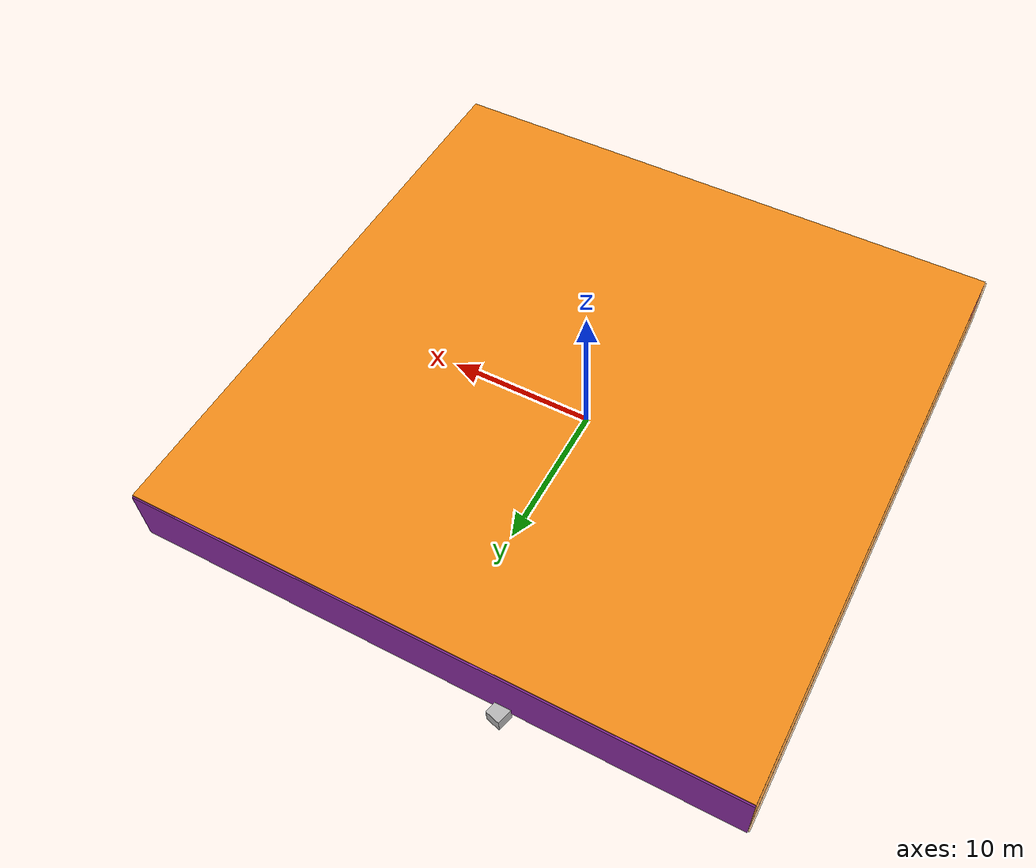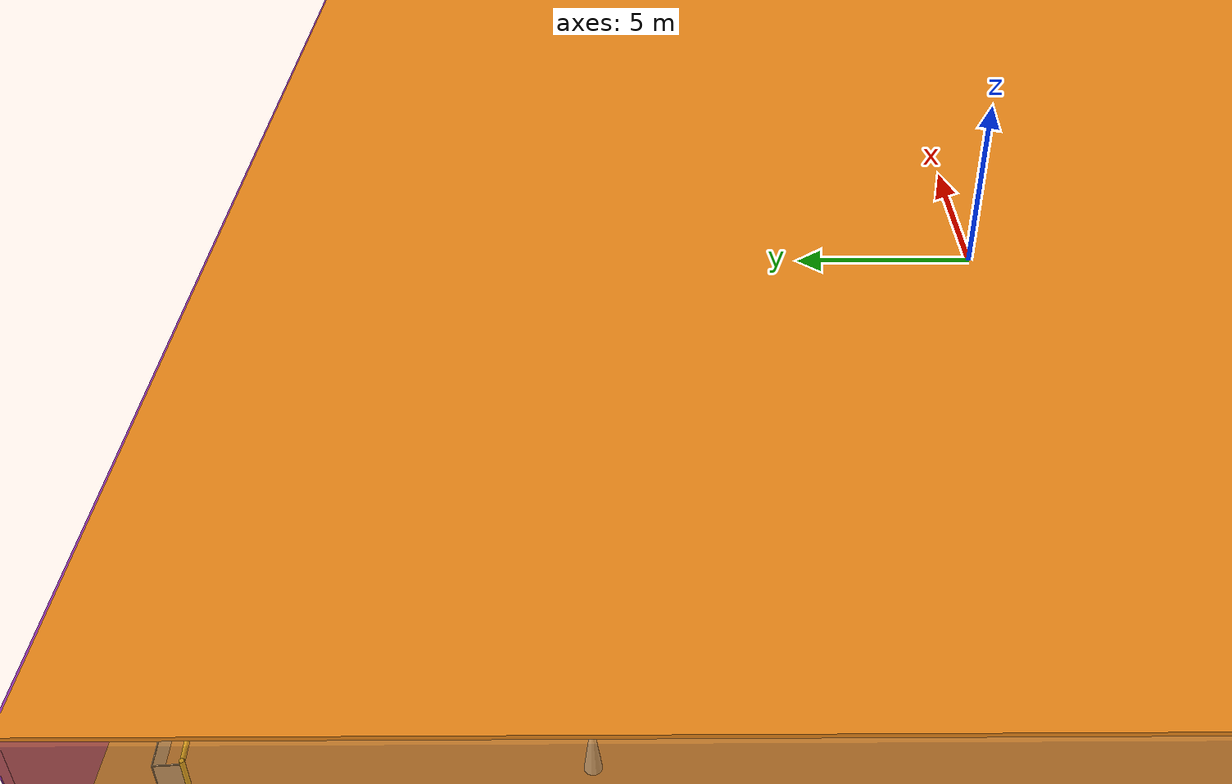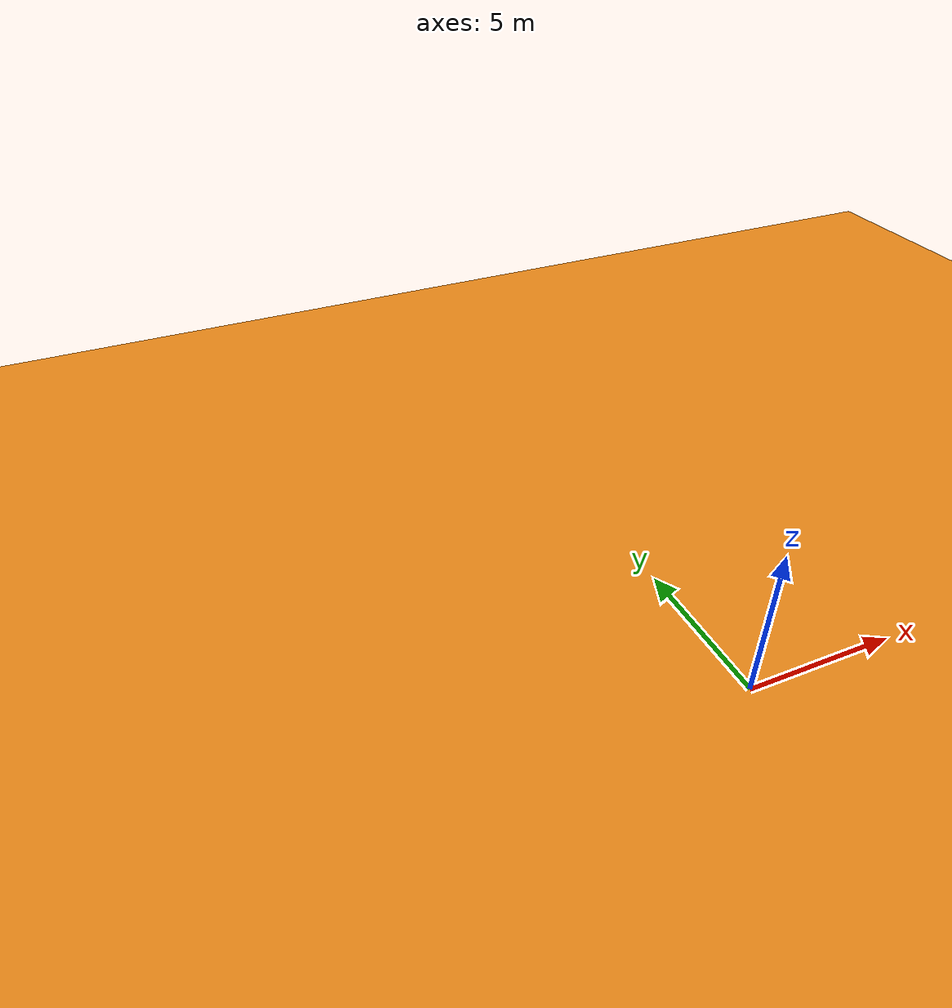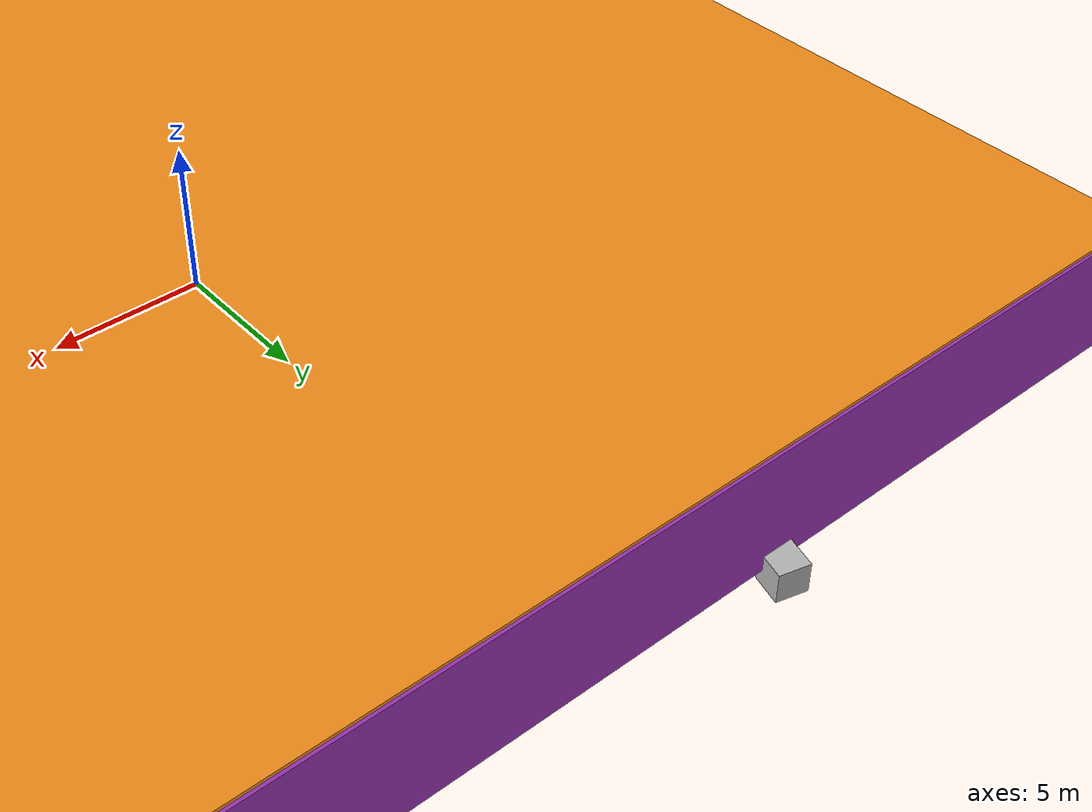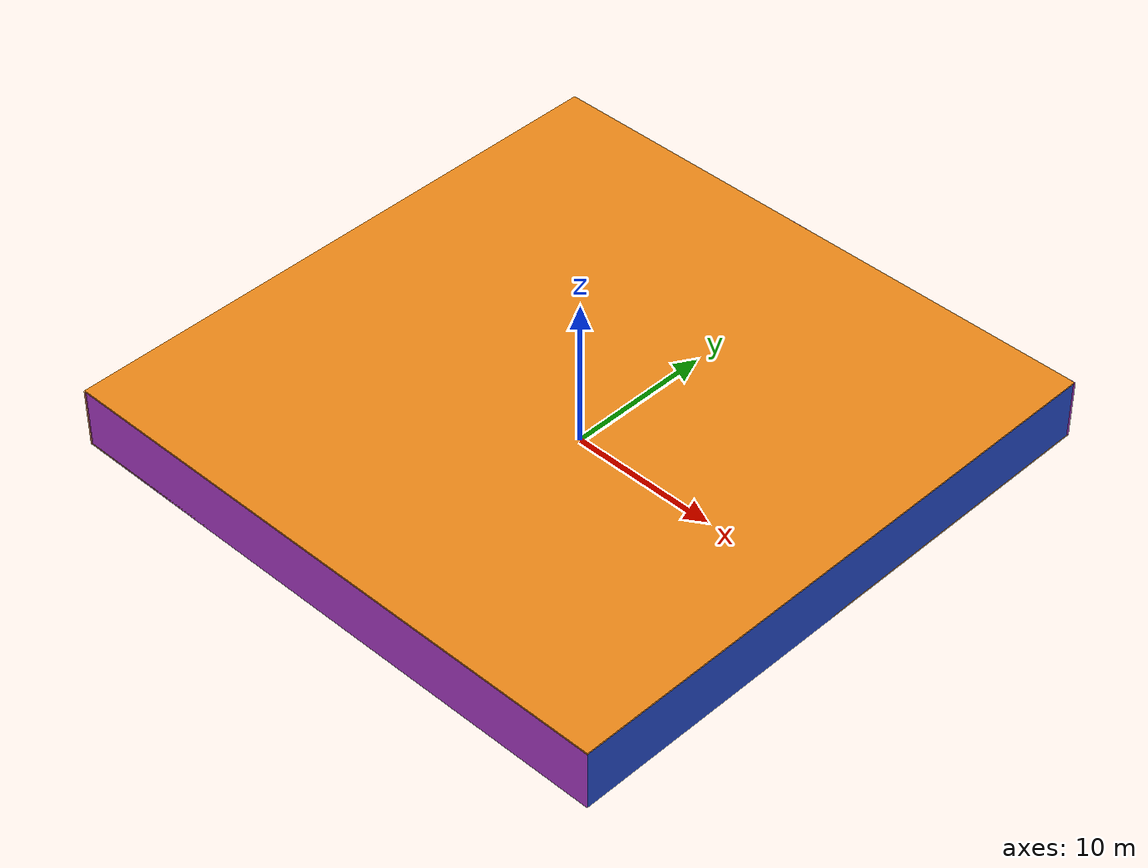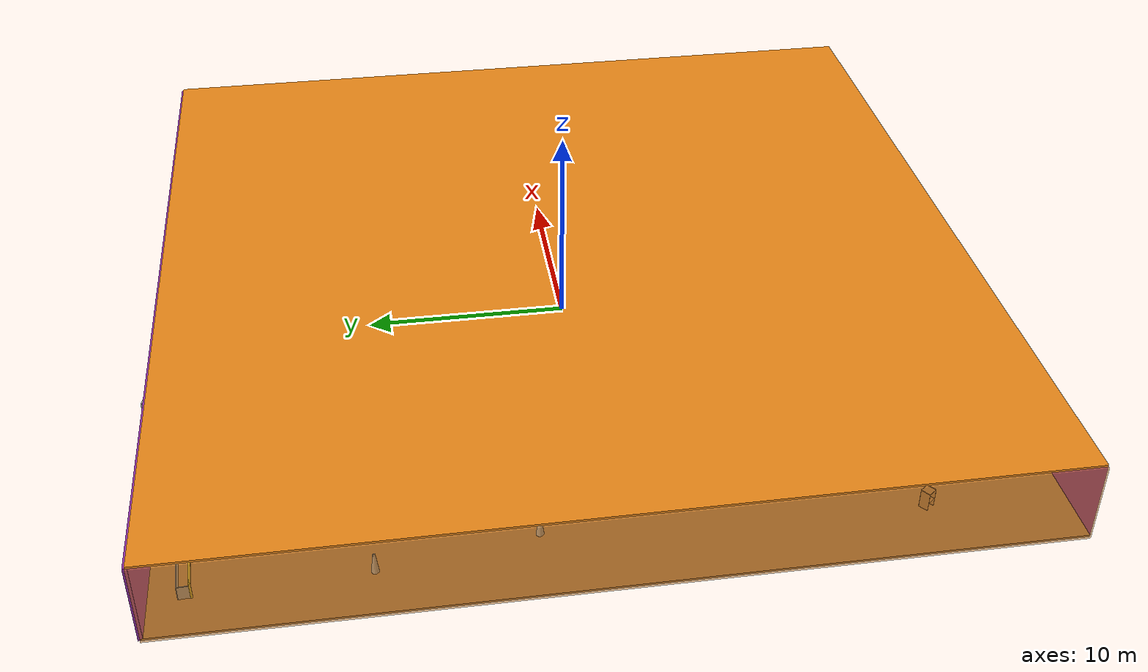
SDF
<sdf version="1.4">
 <world name="default">
  <physics type="ode">
   <max_step_size>0.001</max_step_size>
   <real_time_factor>1</real_time_factor>
   <real_time_update_rate>1000</real_time_update_rate>
   <gravity>0 0 -9.8</gravity>
  </physics>
  <scene><ambient>0.4 0.4 0.4 1</ambient><background>0.7 0.7 0.7 1</background><shadows>1</shadows></scene>
  <model name="Surrounding">
   <static>1</static>
   <link name="Ceiling">
    <collision name="Ceiling_Collision"><geometry><box><size>40 40 0.1</size></box></geometry></collision>
    <visual name="Ceiling_Visual">
     <geometry><box><size>40 40 0.1</size></box></geometry>
     <material>
      <script><uri>file://media/materials/scripts/gazebo.material</uri><name>Gazebo/Orange</name></script>
     </material>
    </visual>
    <pose>0 0 4.05 0 0 0</pose>
   </link>
   <link name="Wall_South">
    <collision name="Wall_South_Collision">
     <geometry><box><size>40 0 4</size></box></geometry>
     <pose>0 0 2 0 -0 0</pose>
    </collision>
    <visual name="Wall_South_Visual">
     <pose>0 0 2 0 -0 0</pose>
     <geometry><box><size>40 0 4</size></box></geometry>
     <material>
      <script><uri>file://media/materials/scripts/gazebo.material</uri><name>Gazebo/Purple</name></script>
     </material>
    </visual>
    <velocity_decay><linear>0</linear><angular>0</angular></velocity_decay>
    <pose>0 -20 0 0 -0 0</pose>
   </link>
   <link name="Wall_East">
    <collision name="Wall_21_Collision">
     <geometry><box><size>40 0 4</size></box></geometry>
     <pose>0 0 2 0 -0 0</pose>
    </collision>
    <visual name="Wall_21_Visual">
     <pose>0 0 2 0 -0 0</pose>
     <geometry><box><size>40 0 4</size></box></geometry>
     <material>
      <script><uri>file://media/materials/scripts/gazebo.material</uri><name>Gazebo/BlueLaser</name></script>
     </material>
    </visual>
    <velocity_decay><linear>0</linear><angular>0</angular></velocity_decay>
    <pose>20 0 0 0 -0 1.5708</pose>
   </link>
   <link name="Wall_North">
    <collision name="Wall_22_Collision">
     <geometry><box><size>40 0.2 4</size></box></geometry>
     <pose>0 0 2 0 -0 0</pose>
    </collision>
    <visual name="Wall_22_Visual">
     <pose>0 0 2 0 -0 0</pose>
     <geometry><box><size>40 0.2 4</size></box></geometry>
     <material>
      <script><uri>file://media/materials/scripts/gazebo.material</uri><name>Gazebo/Purple</name></script>
     </material>
    </visual>
    <velocity_decay><linear>0</linear><angular>0</angular></velocity_decay>
    <pose>0 20 0 0 -0 0</pose>
   </link>
   <link name="Wall_West">
    <collision name="Wall_23_Collision">
     <geometry><box><size>40 0.2 4</size></box></geometry>
     <pose>0 0 2 0 -0 0</pose>
    </collision>
    <visual name="Wall_23_Visual">
     <pose>0 0 2 0 -0 0</pose>
     <geometry><box><size>40 0.2 4</size></box></geometry>
     <material>
      <script>
       <uri>file://media/materials/scripts/gazebo.material</uri>
       <name>Gazebo/OrangeTransparent</name>
      </script>
     </material>
    </visual>
    <velocity_decay><linear>0</linear><angular>0</angular></velocity_decay>
    <pose>-20 0 0 0 0 -1.5708</pose>
   </link>
   <link name="Ground_link">
    <collision name="collision">
     <pose>0 0 .05 0 -0 0</pose>
     <geometry><box><size>40 40 0.1</size></box></geometry>
    </collision>
    <visual name="visual">
     <pose>0 0 .05 0 -0 0</pose>
     <geometry><box><size>40 40 0.1</size></box></geometry>
     <material>
      <script><uri>file://media/materials/scripts/gazebo.material</uri><name>Gazebo/WoodFloor</name></script>
     </material>
    </visual>
   </link>
   <static>1</static>
  </model>
  <spherical_coordinates>
   <surface_model>EARTH_WGS84</surface_model>
   <latitude_deg>0</latitude_deg>
   <longitude_deg>0</longitude_deg>
   <elevation>0</elevation>
   <heading_deg>0</heading_deg>
  </spherical_coordinates>
  <light name="lightball_0" type="diffuse">
   <diffuse>0.8 0.8 0.8 1</diffuse>
   <specular>0.2 0.2 0.2 1</specular>
   <attenuation>
    <range>100</range>
    <constant>0.7</constant>
    <linear>0.01</linear>
    <quadratic>0.001</quadratic>
   </attenuation>
   <direction>-0.5 0.1 -0.9</direction>
   <pose>-3.59324564344 -15.1989248533 0.9496213226 0 0 0</pose>
  </light>
  <light name="lightball_1" type="diffuse">
   <diffuse>0.8 0.8 0.8 1</diffuse>
   <specular>0.2 0.2 0.2 1</specular>
   <attenuation>
    <range>100</range>
    <constant>0.7</constant>
    <linear>0.01</linear>
    <quadratic>0.001</quadratic>
   </attenuation>
   <direction>-0.5 0.1 -0.9</direction>
   <pose>6.85773827004 -1.3734425039 2.50530160967 0 0 0</pose>
  </light>
  <light name="lightball_2" type="diffuse">
   <diffuse>0.8 0.8 0.8 1</diffuse>
   <specular>0.2 0.2 0.2 1</specular>
   <attenuation>
    <range>100</range>
    <constant>0.7</constant>
    <linear>0.01</linear>
    <quadratic>0.001</quadratic>
   </attenuation>
   <direction>-0.5 0.1 -0.9</direction>
   <pose>14.7640123655 18.5628832633 3.21964445935 0 0 0</pose>
  </light>
  <light name="lightball_3" type="diffuse">
   <diffuse>0.8 0.8 0.8 1</diffuse>
   <specular>0.2 0.2 0.2 1</specular>
   <attenuation>
    <range>100</range>
    <constant>0.7</constant>
    <linear>0.01</linear>
    <quadratic>0.001</quadratic>
   </attenuation>
   <direction>-0.5 0.1 -0.9</direction>
   <pose>8.91342435344 -11.0672750939 1.7185776639 0 0 0</pose>
  </light>
  <light name="lightball_4" type="diffuse">
   <diffuse>0.8 0.8 0.8 1</diffuse>
   <specular>0.2 0.2 0.2 1</specular>
   <attenuation>
    <range>100</range>
    <constant>0.7</constant>
    <linear>0.01</linear>
    <quadratic>0.001</quadratic>
   </attenuation>
   <direction>-0.5 0.1 -0.9</direction>
   <pose>4.51213670178 12.8979593193 2.26074349489 0 0 0</pose>
  </light>
  <include><uri>model://cabinet</uri><pose>-17.2005144895 -13.6401496847 0 0 0 0.655995294801</pose></include>
  <include>
   <uri>model://construction_cone</uri>
   <pose>-16.4444734205 3.42598426405 0 0 0 0.0738651523801</pose>
  </include>
  <include>
   <uri>model://construction_cone</uri>
   <pose>-17.6317048157 10.5495808096 0 0 0 1.43753984269</pose>
  </include>
  <include>
   <uri>model://robocup_3Dsim_goal</uri>
   <pose>-16.982231093 18.1459032573 0 0 0 1.63015969655</pose>
  </include>
  <include>
   <uri>model://robocup_3Dsim_goal</uri>
   <pose>-14.6244899557 16.1982555735 0 0 0 2.11795830578</pose>
  </include>
  <include>
   <uri>model://construction_cone</uri>
   <pose>-10.3821335361 -9.42365486067 0 0 0 1.65829922505</pose>
  </include>
  <include><uri>model://table</uri><pose>-10.566629583 1.41787778867 0 0 0 0.258150350614</pose></include>
  <include><uri>model://table</uri><pose>-7.34974809244 -9.57212082098 0 0 0 1.35814837447</pose></include>
  <include>
   <uri>model://construction_cone</uri>
   <pose>-5.04463862287 -16.5511826537 0 0 0 2.67323974445</pose>
  </include>
  <include><uri>model://table</uri><pose>-4.55868573135 -5.93057233426 0 0 0 2.68776095331</pose></include>
  <include>
   <uri>model://robocup_3Dsim_goal</uri>
   <pose>-5.37849711636 9.08246162016 0 0 0 0.734403489587</pose>
  </include>
  <include><uri>model://cabinet</uri><pose>-4.52482646512 14.9048456165 0 0 0 1.76538819594</pose></include>
  <include>
   <uri>model://textured_shapes</uri>
   <pose>-5.43917145433 19.0163805443 0 0 0 2.88231505762</pose>
  </include>
  <include>
   <uri>model://textured_shapes</uri>
   <pose>-2.05938863962 9.45031479677 0 0 0 0.144082521024</pose>
  </include>
  <include><uri>model://table</uri><pose>-0.26403520592 -9.22640822793 0 0 0 3.01674812465</pose></include>
  <include>
   <uri>model://robocup_3Dsim_goal</uri>
   <pose>0.259831863952 4.3240062004 0 0 0 1.90431506604</pose>
  </include>
  <include>
   <uri>model://textured_shapes</uri>
   <pose>0.659359757889 17.6673070794 0 0 0 1.45675583338</pose>
  </include>
  <include><uri>model://cabinet</uri><pose>3.81299700205 3.19532938281 0 0 0 0.954083135345</pose></include>
  <include>
   <uri>model://construction_cone</uri>
   <pose>9.98504951505 -5.10754251563 0 0 0 0.813817058664</pose>
  </include>
  <include>
   <uri>model://robocup_3Dsim_goal</uri>
   <pose>15.3651491392 -5.96386431677 0 0 0 2.62661719153</pose>
  </include>
  <include><uri>model://cabinet</uri><pose>14.668797478 18.6320828417 0 0 0 1.31720491189</pose></include>
  <include>
   <uri>model://robocup_3Dsim_goal</uri>
   <pose>18.013567374 0.0834305040749 0 0 0 1.33981048917</pose>
  </include>
  <include>
   <uri>model://textured_shapes</uri>
   <pose>17.7128209985 6.51191592854 0 0 0 2.35324107588</pose>
  </include>
 </world>
</sdf>

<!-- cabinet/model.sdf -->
<sdf version="1.5">
  <model name="cabinet">
    <static>true</static>
    <link name="cabinet_bottom_plate">
      <inertial>
        <pose>0 0 -1 0 0 0</pose>
        <inertia>
          <ixx>2.050000</ixx>
          <ixy>0</ixy>
          <ixz>0</ixz>
          <iyy>2.050000</iyy>
          <iyz>0</iyz>
          <izz>2.050000</izz>
        </inertia>
        <mass>25.000000</mass>
      </inertial>
      <collision name="cabinet_bottom_plate_geom">
        <pose>0 0 0.010000 0 0 0</pose>
        <geometry>
          <box>
            <size>0.450000 0.450000 0.020000</size>
          </box>
        </geometry>
      </collision>
      <visual name="cabinet_bottom_plate_geom_visual">
        <pose>0 0 0.010000 0 0 0</pose>
        <geometry>
          <box>
            <size>0.450000 0.450000 0.020000</size>
          </box>
        </geometry>
        <material>
          <script>
            <uri>model://media/materials/scripts/gazebo.material</uri>
            <name>Gazebo/Wood</name>
          </script>
        </material>
      </visual>
      <collision name="cabinet_bottom_plate_geom_cabinet_back_plate">
        <pose>0.235000 0 0.510000 0 0 0</pose>
        <geometry>
          <box>
            <size>0.020000 0.450000 1.020000</size>
          </box>
        </geometry>
      </collision>
      <visual name="cabinet_bottom_plate_geom_cabinet_back_plate_visual">
        <pose>0.235000 0 0.510000 0 0 0</pose>
        <geometry>
          <box>
            <size>0.020000 0.450000 1.020000</size>
          </box>
        </geometry>
        <material>
          <script>
            <uri>model://media/materials/scripts/gazebo.material</uri>
            <name>Gazebo/Wood</name>
          </script>
        </material>
      </visual>
      <collision name="cabinet_bottom_plate_geom_cabinet_left_plate">
        <pose>0 0.235000 0.510000 0 0 0</pose>
        <geometry>
          <box>
            <size>0.450000 0.020000 1.020000</size>
          </box>
        </geometry>
      </collision>
      <visual name="cabinet_bottom_plate_geom_cabinet_left_plate_visual">
        <pose>0 0.235000 0.510000 0 0 0</pose>
        <geometry>
          <box>
            <size>0.450000 0.020000 1.020000</size>
          </box>
        </geometry>
        <material>
          <script>
            <uri>model://media/materials/scripts/gazebo.material</uri>
            <name>Gazebo/Wood</name>
          </script>
        </material>
      </visual>
      <collision name="cabinet_bottom_plate_geom_cabinet_middle_plate">
        <pose>0 0 0.510000 0 0 0</pose>
        <geometry>
          <box>
            <size>0.450000 0.450000 0.020000</size>
          </box>
        </geometry>
      </collision>
      <visual name="cabinet_bottom_plate_geom_cabinet_middle_plate_visual">
        <pose>0 0 0.510000 0 0 0</pose>
        <geometry>
          <box>
            <size>0.450000 0.450000 0.020000</size>
          </box>
        </geometry>
        <material>
          <script>
            <uri>model://media/materials/scripts/gazebo.material</uri>
            <name>Gazebo/Wood</name>
          </script>
        </material>
      </visual>
      <collision name="cabinet_bottom_plate_geom_cabinet_right_plate">
        <pose>0 -0.235000 0.510000 0 0 0</pose>
        <geometry>
          <box>
            <size>0.450000 0.020000 1.020000</size>
          </box>
        </geometry>
      </collision>
      <visual name="cabinet_bottom_plate_geom_cabinet_right_plate_visual">
        <pose>0 -0.235000 0.510000 0 0 0</pose>
        <geometry>
          <box>
            <size>0.450000 0.020000 1.020000</size>
          </box>
        </geometry>
        <material>
          <script>
            <uri>model://media/materials/scripts/gazebo.material</uri>
            <name>Gazebo/Wood</name>
          </script>
        </material>
      </visual>
      <collision name="cabinet_bottom_plate_geom_cabinet_top_plate">
        <pose>0 0 1.010000 0 0 0</pose>
        <geometry>
          <box>
            <size>0.450000 0.450000 0.020000</size>
          </box>
        </geometry>
      </collision>
      <visual name="cabinet_bottom_plate_geom_cabinet_top_plate_visual">
        <pose>0 0 1.010000 0 0 0</pose>
        <geometry>
          <box>
            <size>0.450000 0.450000 0.020000</size>
          </box>
        </geometry>
        <material>
          <script>
            <uri>model://media/materials/scripts/gazebo.material</uri>
            <name>Gazebo/Wood</name>
          </script>
        </material>
      </visual>
    </link>
  </model>
</sdf>

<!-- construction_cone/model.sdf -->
<sdf version="1.5">
  <model name="Construction Cone">
    <link name="link">
      <collision name="collision">
        <geometry>
          <mesh>
            <scale>10 10 10</scale>
            <uri>file://isr-testbed/construction_cone/meshes/construction_cone.dae</uri>
          </mesh>
        </geometry>
      </collision>
      <visual name="visual">
        <geometry>
          <mesh>
            <scale>10 10 10</scale>
            <uri>file://isr-testbed/construction_cone/meshes/construction_cone.dae</uri>
          </mesh>
        </geometry>
      </visual>
    </link>
  </model>
</sdf>

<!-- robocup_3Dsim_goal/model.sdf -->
<sdf version="1.5">
  <model name="robocup_3d_goal">
    <static>true</static>
    <link name="left_post">
      <pose>0 1.05 0.45 0 0 0</pose>
      <collision name="collision">
        <geometry>
          <cylinder>
            <radius>0.05</radius>
            <length>0.9</length>
          </cylinder>
        </geometry>
      </collision>
      <visual name="visual">
        <geometry>
          <cylinder>
            <radius>0.05</radius>
            <length>0.9</length>
          </cylinder>
        </geometry>
        <material>
          <script>
            <uri>file://media/materials/scripts/gazebo.material</uri>
            <name>Gazebo/ZincYellow</name>
          </script>
        </material>
      </visual>
    </link>
    <link name="left_support_horiz_lower">
      <pose>0.30 1.05 0.01 0 0 0</pose>
      <collision name="collision">
        <geometry>
          <box>
            <size>0.50 0.02 0.02</size>
          </box>
        </geometry>
      </collision>
      <visual name="visual">
        <geometry>
          <box>
            <size>0.50 0.02 0.02</size>
          </box>
        </geometry>
        <material>
          <script>
            <uri>file://media/materials/scripts/gazebo.material</uri>
            <name>Gazebo/White</name>
          </script>
        </material>
      </visual>
    </link>
    <link name="left_support_horiz_upper">
      <pose>0.30 1.05 0.79 0 0 0</pose>
      <collision name="collision">
        <geometry>
          <box>
            <size>0.50 0.02 0.02</size>
          </box>
        </geometry>
      </collision>
      <visual name="visual">
        <geometry>
          <box>
            <size>0.50 0.02 0.02</size>
          </box>
        </geometry>
        <material>
          <script>
            <uri>file://media/materials/scripts/gazebo.material</uri>
            <name>Gazebo/White</name>
          </script>
        </material>
      </visual>
    </link>
    <link name="left_support_vertical">
      <pose>0.56 1.05 0.4 0 1.5708 0</pose>
      <collision name="collision">
        <geometry>
          <box>
            <size>0.80 0.02 0.02</size>
          </box>
        </geometry>
      </collision>
      <visual name="visual">
        <geometry>
          <box>
            <size>0.80 0.02 0.02</size>
          </box>
        </geometry>
        <material>
          <script>
            <uri>file://media/materials/scripts/gazebo.material</uri>
            <name>Gazebo/White</name>
          </script>
        </material>
      </visual>
    </link>
    <link name="right_support_horiz_lower">
      <pose>0.30 -1.05 0.01 0 0 0</pose>
      <collision name="collision">
        <geometry>
          <box>
            <size>0.50 0.02 0.02</size>
          </box>
        </geometry>
      </collision>
      <visual name="visual">
        <geometry>
          <box>
            <size>0.50 0.02 0.02</size>
          </box>
        </geometry>
        <material>
          <script>
            <uri>file://media/materials/scripts/gazebo.material</uri>
            <name>Gazebo/White</name>
          </script>
        </material>
      </visual>
    </link>
    <link name="right_support_horiz_upper">
      <pose>0.30 -1.05 0.79 0 0 0</pose>
      <collision name="collision">
        <geometry>
          <box>
            <size>0.50 0.02 0.02</size>
          </box>
        </geometry>
      </collision>
      <visual name="visual">
        <geometry>
          <box>
            <size>0.50 0.02 0.02</size>
          </box>
        </geometry>
        <material>
          <script>
            <uri>file://media/materials/scripts/gazebo.material</uri>
            <name>Gazebo/White</name>
          </script>
        </material>
      </visual>
    </link>
    <link name="right_support_vertical">
      <pose>0.56 -1.05 0.4 0 1.5708 0</pose>
      <collision name="collision">
        <geometry>
          <box>
            <size>0.80 0.02 0.02</size>
          </box>
        </geometry>
      </collision>
      <visual name="visual">
        <geometry>
          <box>
            <size>0.80 0.02 0.02</size>
          </box>
        </geometry>
        <material>
          <script>
            <uri>file://media/materials/scripts/gazebo.material</uri>
            <name>Gazebo/White</name>
          </script>
        </material>
      </visual>
    </link>
    <link name="center_support_horiz_lower">
      <pose>0.56 0 0.01 0 1.5708 0</pose>
      <collision name="collision">
        <geometry>
          <box>
            <size>0.02 2.08 0.02</size>
          </box>
        </geometry>
      </collision>
      <visual name="visual">
        <geometry>
          <box>
            <size>0.02 2.08 0.02</size>
          </box>
        </geometry>
        <material>
          <script>
            <uri>file://media/materials/scripts/gazebo.material</uri>
            <name>Gazebo/White</name>
          </script>
        </material>
      </visual>
    </link>
    <link name="center_support_horiz_upper">
      <pose>0.56 0 0.79 0 1.5708 0</pose>
      <collision name="collision">
        <geometry>
          <box>
            <size>0.02 2.08 0.02</size>
          </box>
        </geometry>
      </collision>
      <visual name="visual">
        <geometry>
          <box>
            <size>0.02 2.08 0.02</size>
          </box>
        </geometry>
        <material>
          <script>
            <uri>file://media/materials/scripts/gazebo.material</uri>
            <name>Gazebo/White</name>
          </script>
        </material>
      </visual>
    </link>
    <link name="right_post">
      <pose>0 -1.05 0.45 0 0 0</pose>
      <collision name="collision">
        <geometry>
          <cylinder>
            <radius>0.05</radius>
            <length>0.9</length>
          </cylinder>
        </geometry>
      </collision>
      <visual name="visual">
        <geometry>
          <cylinder>
            <radius>0.05</radius>
            <length>0.9</length>
          </cylinder>
        </geometry>
        <material>
          <script>
            <uri>file://media/materials/scripts/gazebo.material</uri>
            <name>Gazebo/ZincYellow</name>
          </script>
        </material>
      </visual>
    </link>
    <link name="crossbar">
      <pose>0 0 0.85 1.57 1.57 0</pose>
      <collision name="collision">
        <geometry>
          <cylinder>
            <radius>0.05</radius>
            <length>2.0</length>
          </cylinder>
        </geometry>
      </collision>
      <visual name="visual">
        <geometry>
          <cylinder>
            <radius>0.05</radius>
            <length>2.0</length>
          </cylinder>
        </geometry>
        <material>
          <script>
            <uri>file://media/materials/scripts/gazebo.material</uri>
            <name>Gazebo/ZincYellow</name>
          </script>
        </material>
      </visual>
    </link>
    <link name="center_net">
      <pose>0.56 0 0.40 0 0 0</pose>
      <collision name="collision">
        <geometry>
          <box>
            <size>0.01 2.1 0.80</size>
          </box>
        </geometry>
      </collision>
      <visual name="visual">
        <geometry>
          <box>
            <size>0.01 2.1 0.80</size>
          </box>
        </geometry>
        <material>
          <script>
            <uri>model://../model_source/models/robocup09_spl_field/materials/scripts/</uri>
            <uri>model://../model_source/models/robocup09_spl_field/materials/textures/</uri>
            <name>RoboCup/Net</name>
          </script>
        </material>
      </visual>
    </link>
    <link name="left_net">
      <pose>0.30 1.05 0.40 0 0 0</pose>
      <collision name="collision">
        <geometry>
          <box>
            <size>0.50 0.01 0.76</size>
          </box>
        </geometry>
      </collision>
      <visual name="visual">
        <geometry>
          <box>
            <size>0.50 0.01 0.76</size>
          </box>
        </geometry>
        <material>
          <script>
            <uri>model://../model_source/models/robocup09_spl_field/materials/scripts/</uri>
            <uri>model://../model_source/models/robocup09_spl_field/materials/textures/</uri>
            <name>RoboCup/Net</name>
          </script>
        </material>
      </visual>
    </link>
    <link name="right_net">
      <pose>0.30 -1.05 0.40 0 0 0</pose>
      <collision name="collision">
        <geometry>
          <box>
            <size>0.50 0.01 0.76</size>
          </box>
        </geometry>
      </collision>
      <visual name="visual">
        <geometry>
          <box>
            <size>0.50 0.01 0.76</size>
          </box>
        </geometry>
        <material>
          <script>
            <uri>model://../model_source/models/robocup09_spl_field/materials/scripts/</uri>
            <uri>model://../model_source/models/robocup09_spl_field/materials/textures/</uri>
            <name>RoboCup/Net</name>
          </script>
        </material>
      </visual>
    </link>
  </model>
</sdf>

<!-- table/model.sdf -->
<sdf version="1.5">
  <model name="table">
    <static>true</static>
    <link name="link">
      <collision name="surface">
        <pose>0 0 1.0 0 0 0</pose>
        <geometry>
          <box>
            <size>1.5 0.8 0.03</size>
          </box>
        </geometry>
        <surface>
          <friction>
            <ode>
              <mu>0.6</mu>
              <mu2>0.6</mu2>
            </ode>
          </friction>
        </surface>
      </collision>
      <visual name="visual1">
        <pose>0 0 1.0 0 0 0</pose>
        <geometry>
          <box>
            <size>1.5 0.8 0.03</size>
          </box>
        </geometry>
        <material>
          <script>
            <uri>model://media/materials/scripts/gazebo.material</uri>
            <name>Gazebo/Wood</name>
          </script>
        </material>
      </visual>
      <collision name="front_left_leg">
        <pose>0.68 0.38 0.5 0 0 0</pose>
        <geometry>
          <cylinder>
            <radius>0.02</radius>
            <length>1.0</length>
          </cylinder>
        </geometry>
      </collision>
      <visual name="front_left_leg">
        <pose>0.68 0.38 0.5 0 0 0</pose>
        <geometry>
          <cylinder>
            <radius>0.02</radius>
            <length>1.0</length>
          </cylinder>
        </geometry>
        <material>
          <script>
            <uri>model://media/materials/scripts/gazebo.material</uri>
            <name>Gazebo/Grey</name>
          </script>
        </material>
      </visual>
      <collision name="front_right_leg">
        <pose>0.68 -0.38 0.5 0 0 0</pose>
        <geometry>
          <cylinder>
            <radius>0.02</radius>
            <length>1.0</length>
          </cylinder>
        </geometry>
      </collision>
      <visual name="front_right_leg">
        <pose>0.68 -0.38 0.5 0 0 0</pose>
        <geometry>
          <cylinder>
            <radius>0.02</radius>
            <length>1.0</length>
          </cylinder>
        </geometry>
        <material>
          <script>
            <uri>model://media/materials/scripts/gazebo.material</uri>
            <name>Gazebo/Grey</name>
          </script>
        </material>
      </visual>
      <collision name="back_right_leg">
        <pose>-0.68 -0.38 0.5 0 0 0</pose>
        <geometry>
          <cylinder>
            <radius>0.02</radius>
            <length>1.0</length>
          </cylinder>
        </geometry>
      </collision>
      <visual name="back_right_leg">
        <pose>-0.68 -0.38 0.5 0 0 0</pose>
        <geometry>
          <cylinder>
            <radius>0.02</radius>
            <length>1.0</length>
          </cylinder>
        </geometry>
        <material>
          <script>
            <uri>model://media/materials/scripts/gazebo.material</uri>
            <name>Gazebo/Grey</name>
          </script>
        </material>
      </visual>
      <collision name="back_left_leg">
        <pose>-0.68 0.38 0.5 0 0 0</pose>
        <geometry>
          <cylinder>
            <radius>0.02</radius>
            <length>1.0</length>
          </cylinder>
        </geometry>
      </collision>
      <visual name="back_left_leg">
        <pose>-0.68 0.38 0.5 0 0 0</pose>
        <geometry>
          <cylinder>
            <radius>0.02</radius>
            <length>1.0</length>
          </cylinder>
        </geometry>
        <material>
          <script>
            <uri>model://media/materials/scripts/gazebo.material</uri>
            <name>Gazebo/Grey</name>
          </script>
        </material>
      </visual>
    </link>
  </model>
</sdf>

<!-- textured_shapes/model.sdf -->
<sdf version="1.6">
  <model name="textured_shapes">
    <pose>0 0 0.5 0 0 0</pose>
    <link name="box">
      <pose>0 -1.5 0 0 0 0</pose>
      <collision name="collision">
        <geometry>
          <box>
            <size>1 1 1</size>
          </box>
        </geometry>
      </collision>
      <visual name="visual">
        <geometry>
          <box>
            <size>1 1 1</size>
          </box>
        </geometry>
        <material>
          <script>
            <uri>model://../model_source/models/textured_shapes/materials/scripts</uri>
            <uri>model://../model_source/models/textured_shapes/materials/textures</uri>
            <name>TexturedShape/Squares</name>
          </script>
        </material>
      </visual>
    </link>
    <link name="sphere">
      <collision name="collision">
        <geometry>
          <sphere>
            <radius>0.5</radius>
          </sphere>
        </geometry>
      </collision>
      <visual name="visual">
        <geometry>
          <sphere>
            <radius>0.5</radius>
          </sphere>
        </geometry>
        <material>
          <script>
            <uri>model://../model_source/models/textured_shapes/materials/scripts</uri>
            <uri>model://../model_source/models/textured_shapes/materials/textures</uri>
            <name>TexturedShape/Squares</name>
          </script>
        </material>
      </visual>
    </link>
    <link name="cylinder">
      <pose>0 1.5 0 0 0 0</pose>
      <collision name="collision">
        <geometry>
          <cylinder>
            <radius>0.5</radius>
            <length>1</length>
          </cylinder>
        </geometry>
      </collision>
      <visual name="visual">
        <geometry>
          <cylinder>
            <radius>0.5</radius>
            <length>1</length>
          </cylinder>
        </geometry>
        <material>
          <script>
            <uri>model://../model_source/models/textured_shapes/materials/scripts</uri>
            <uri>model://../model_source/models/textured_shapes/materials/textures</uri>
            <name>TexturedShape/Squares</name>
          </script>
        </material>
      </visual>
    </link>
  </model>
</sdf>
